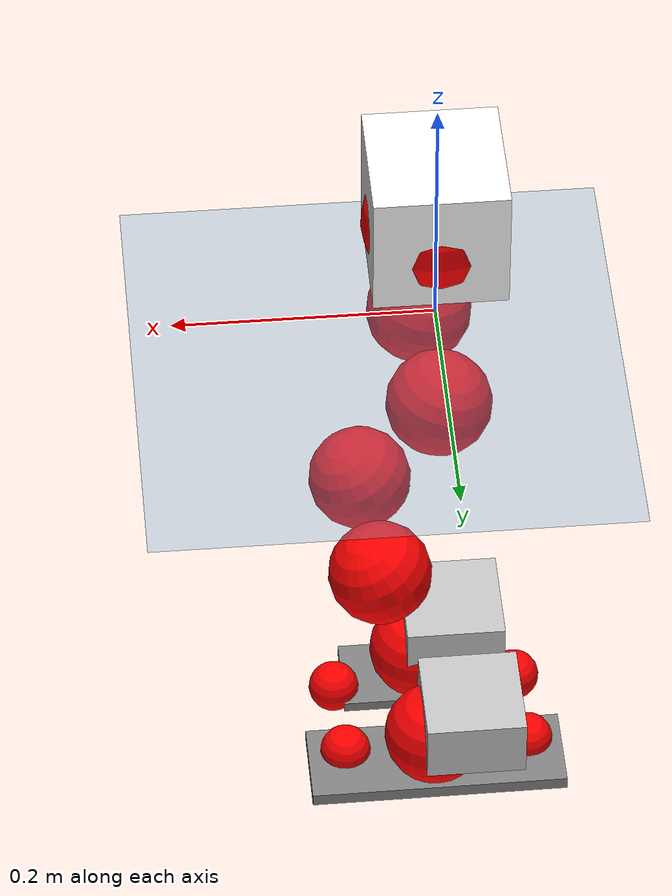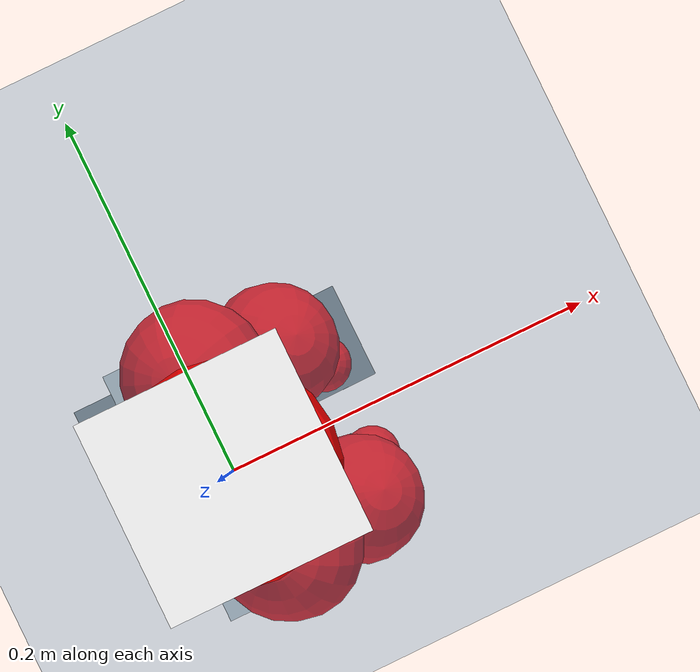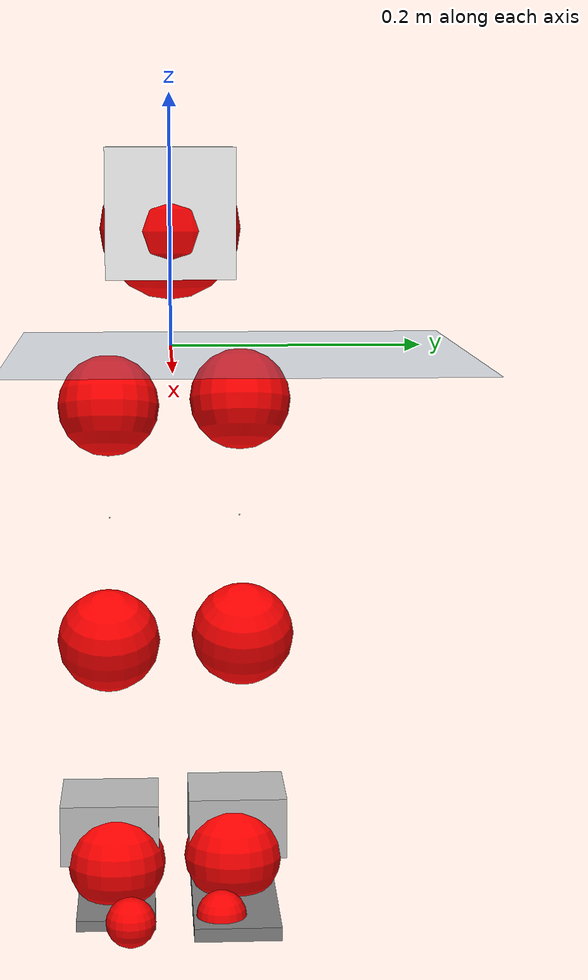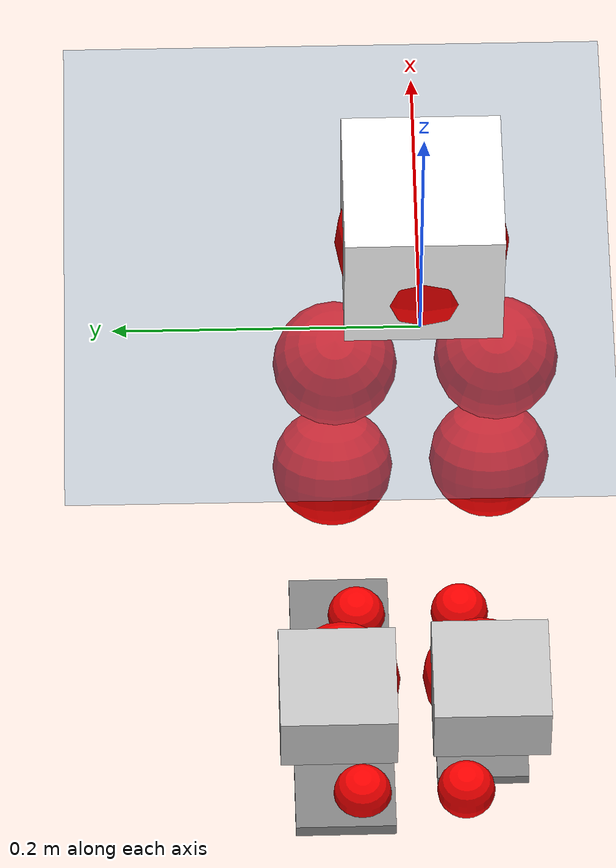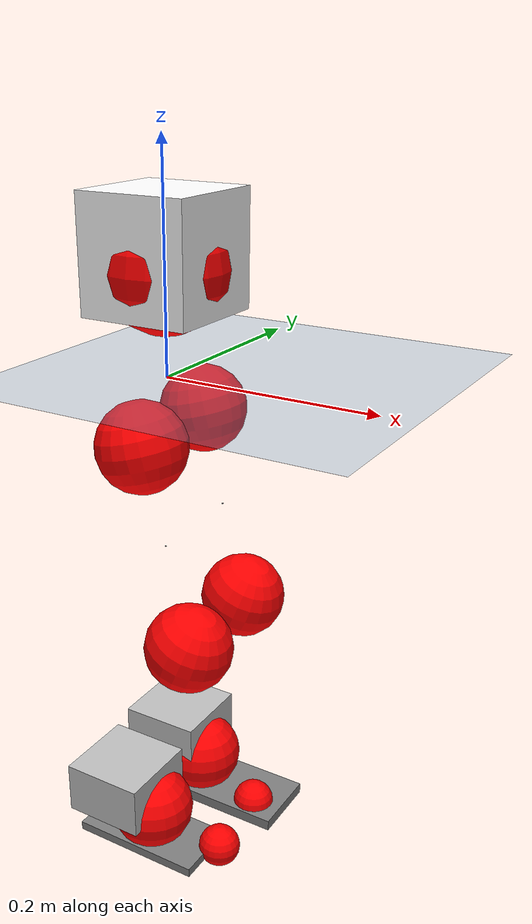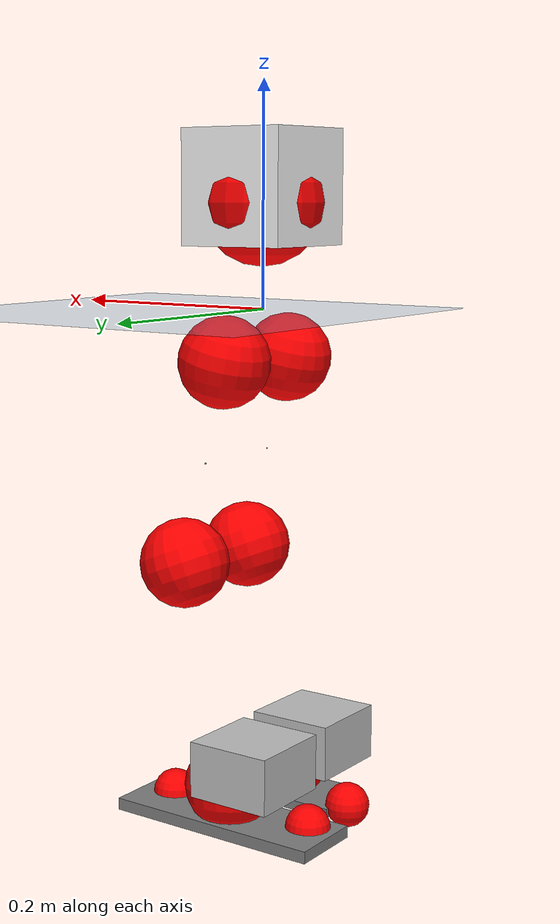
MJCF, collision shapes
<mujoco model="pi_12dof_release_v1">
  <compiler angle="radian" assetdir="assets" balanceinertia="true" inertiafromgeom="false"/>

  <option timestep="0.005" density="1.2" viscosity="2e-05"/>

  <size nkey="1"/>

  <visual>
    <quality shadowsize="8192"/>
    <map shadowclip="0.5"/>
  </visual>

  <default>
    <default class="/">
      <joint armature="0.01" damping="0.01" frictionloss="0.01"/>
      <geom contype="0" conaffinity="0" group="1" solref="-1000 -80"/>
      <site size="0.01 0.005 0.005" group="5"/>
      <general forcelimited="true" biastype="affine" gainprm="20" biasprm="0 -20 -0.5"/>
      <default class="foot">
        <geom size="0.0845 0.036 0.005" type="box" condim="6" group="4" priority="1" friction="0.9 0.2 0.2" solimp="0.015 1 0.005"/>
      </default>
      <default class="reward_collision_sphere">
        <geom group="5" rgba="1 0 0 1"/>
      </default>
    </default>
  </default>

  <asset>
    <texture type="skybox" colorspace="auto" name="//unnamed_texture_0" builtin="gradient" rgb1="0.95 0.95 0.95" rgb2="0.95 0.95 0.95" width="100" height="600"/>
    <texture type="2d" colorspace="auto" name="texplane" builtin="checker" rgb1="0.345 0.575 0.748" rgb2="0.345 0.575 0.748" markrgb="1 1 1" width="512" height="512"/>
    <material name="MatPlane" class="/" texture="texplane" texuniform="true" texrepeat="2 2" specular="0.9"/>
    <mesh name="baselink_1" class="/" file="baselink_1.STL"/>
    <mesh name="r_hip_pitch_link" class="/" file="r_hip_pitch_link.STL"/>
    <mesh name="r_hip_roll_link" class="/" file="r_hip_roll_link.STL"/>
    <mesh name="r_thigh_link" class="/" file="r_thigh_link.STL"/>
    <mesh name="r_calf_link" class="/" file="r_calf_link.STL"/>
    <mesh name="r_ankle_pitch_link" class="/" file="r_ankle_pitch_link.STL"/>
    <mesh name="r_ankle_roll_link" class="/" file="r_ankle_roll_link.STL"/>
    <mesh name="l_hip_pitch_link" class="/" file="l_hip_pitch_link.STL"/>
    <mesh name="l_hip_roll_link" class="/" file="l_hip_roll_link.STL"/>
    <mesh name="l_thigh_link" class="/" file="l_thigh_link.STL"/>
    <mesh name="l_calf_link" class="/" file="l_calf_link.STL"/>
    <mesh name="l_ankle_pitch_link" class="/" file="l_ankle_pitch_link.STL"/>
    <mesh name="l_ankle_roll_link" class="/" file="l_ankle_roll_link.STL"/>
  </asset>

  <worldbody>
    <geom name="floor" class="/" size="100 100 0.125" type="plane" group="0" material="MatPlane"/>
    <light name="toplight_shadow" class="/" pos="0 0 5" dir="0.0990148 0.0990148 -0.990148" type="directional" ambient="0.04 0.04 0.04" diffuse="0.55 0.55 0.55" specular="0.12 0.12 0.12"/>
    <light name="toplight_fill" class="/" pos="0 0 5" dir="0.0990148 0.0990148 -0.990148" type="directional" castshadow="false" ambient="0.04 0.04 0.04" diffuse="0.3 0.3 0.3" specular="0.08 0.08 0.08"/>
    <body name="trunk" pos="0.000867779 8.38434e-06 -0.000621598" quat="1 -0.000539531 0.000309649 0.000103096">
      <inertial pos="0.00290285 0.00123246 0.0566436" quat="0.692744 -0.000425056 0.0169174 0.720985" mass="2.30559" diaginertia="0.0153485 0.000750276 0.0175506"/>
      <joint name="//unnamed_joint_0" type="free"/>
      <geom name="//unnamed_geom_1" class="/" type="mesh" density="0" rgba="1 1 1 1" mesh="baselink_1"/>
      <geom name="//unnamed_geom_2" class="/" size="0.0507503 0.0507503 0.0507503" pos="0 0 0.107382" type="box" rgba="1 1 1 1"/>
      <geom name="//unnamed_geom_3" class="reward_collision_sphere" size="0.0558254" pos="0 0 0.0939596"/>
      <site name="imu" class="/" pos="0.0163029 -0.00835407 -0.00703155" size="0.0101501"/>
      <camera name="track" class="/" pos="0 -1.22052 0" quat="0.707107 0.707107 0 0" mode="trackcom"/>
      <camera name="ego_camera" class="/" pos="0.081936 0 0.24161" quat="-0.5 -0.5 0.5 0.5"/>
      <body name="r_hip_pitch_link" pos="0.00369956 -0.0159481 -0.0455011" quat="0.992292 0.000244006 -0.123921 -0.000552215">
        <inertial pos="-0.000559112 -0.0363535 -0.000165829" quat="-0.0139585 0.703369 -0.0317905 0.709977" mass="0.397179" diaginertia="0.00017412 8.41924e-06 0.000375093"/>
        <joint name="r_hip_pitch_joint" class="/" pos="0 0 0" axis="0.0152178 -0.999843 -0.00908976" range="-1.74154 1.29412" armature="0.00896086" damping="0.0232605" frictionloss="0.00882504"/>
        <geom name="//unnamed_geom_4" class="/" type="mesh" density="0" rgba="0.75294 0.75294 0.75294 1" mesh="r_hip_pitch_link"/>
        <geom name="//unnamed_geom_5" class="/" size="0.000507503 0.000507503 0.000507503" type="box" rgba="0.75294 0.75294 0.75294 1"/>
        <body name="r_hip_roll_link" pos="0.00254644 -0.0343271 -0.00156663" quat="1 0.000302236 3.26114e-05 0.000233662">
          <inertial pos="0.00110742 -0.000764396 -0.0836251" quat="0.71159 -0.0757897 -0.0917816 0.692439" mass="0.414759" diaginertia="0.000534758 2.37002e-05 0.000547479"/>
          <joint name="r_hip_roll_joint" class="/" pos="0 0 0" axis="-0.999874 0.0117949 -0.0106568" range="-0.0868701 0.545277" armature="0.00877178" damping="0.000445763" frictionloss="0.0102739"/>
          <geom name="//unnamed_geom_6" class="/" type="mesh" density="0" rgba="0.75294 0.75294 0.75294 1" mesh="r_hip_roll_link"/>
          <geom name="//unnamed_geom_7" class="/" size="0.000507503 0.000507503 0.000507503" type="box" rgba="0.75294 0.75294 0.75294 1"/>
          <geom name="//unnamed_geom_8" class="reward_collision_sphere" size="0.0406003"/>
          <body name="r_thigh_link" pos="-0.00038013 0.000465699 -0.0899411" quat="1 0.000293643 7.89259e-05 0.000167649">
            <inertial pos="-0.00136027 4.96066e-05 -0.0665017" quat="0.741001 0.671404 -0.00261255 0.0112947" mass="0.115564" diaginertia="0.000189877 8.04325e-06 0.000239402"/>
            <joint name="r_thigh_joint" class="/" pos="0 0 0" axis="-0.00629411 -0.00265923 -0.999977" stiffness="0.00186809" range="-0.251118 0.636327" armature="0.010028" damping="0.00867593" frictionloss="0.0111418"/>
            <geom name="//unnamed_geom_9" class="/" type="mesh" density="0" rgba="0.75294 0.75294 0.75294 1" mesh="r_thigh_link"/>
            <geom name="//unnamed_geom_10" class="/" size="0.000507503 0.000507503 0.000507503" type="box" rgba="0.75294 0.75294 0.75294 1"/>
            <body name="r_calf_link" pos="-0.000605736 -0.00125472 -0.0975937" quat="0.947626 0.000135494 0.319382 -5.06878e-05">
              <inertial pos="-0.00172763 -0.000467124 -0.0935126" quat="0.999989 0.000676686 -0.00191213 0.00411623" mass="0.836361" diaginertia="0.0054026 0.000306765 0.000776212"/>
              <joint name="r_calf_joint" class="/" pos="0 0 0" axis="-0.000345515 -1 0.000136236" range="-1.66419 0.682503" armature="0.00974097" damping="0.0118312" frictionloss="0.00910438"/>
              <geom name="//unnamed_geom_11" class="/" type="mesh" density="0" rgba="0.75294 0.75294 0.75294 1" mesh="r_calf_link"/>
              <geom name="//unnamed_geom_12" class="/" size="0.000507503 0.000507503 0.000507503" type="box" rgba="0.75294 0.75294 0.75294 1"/>
              <geom name="//unnamed_geom_13" class="reward_collision_sphere" size="0.0406003"/>
              <body name="r_ankle_pitch_link" pos="-0.000901125 -0.00249588 -0.190008" quat="0.980062 -0.000325794 -0.198693 -0.000309387">
                <inertial pos="0.00506677 0.00413123 -0.00108271" quat="-0.00302566 0.708546 -0.00309115 0.705651" mass="0.189396" diaginertia="0.000484663 1.90473e-05 0.000536603"/>
                <joint name="r_ankle_pitch_joint" class="/" pos="0 0 0" axis="-0.0139247 -0.999898 0.00322423" range="-1.35249 0.548679" armature="0.00893715" damping="0.0124192" frictionloss="0.0102455"/>
                <geom name="//unnamed_geom_14" class="/" type="mesh" density="0" rgba="0.75294 0.75294 0.75294 1" mesh="r_ankle_pitch_link"/>
                <geom name="//unnamed_geom_15" class="/" size="0.0395853 0.0406003 0.0253752" type="box" rgba="0.75294 0.75294 0.75294 1"/>
                <body name="r_ankle_roll_link" pos="0.081314 0.00554938 0.00129215" quat="1 0.000152988 -9.50944e-05 0.00034584">
                  <inertial pos="-0.0251352 0.000433416 -0.0215296" quat="0.565956 0.427526 0.430913 0.557879" mass="0.527896" diaginertia="0.00182027 8.74212e-05 0.00123172"/>
                  <joint name="r_ankle_roll_joint" class="/" pos="0 0 0" axis="-0.999996 -0.00292179 0.000227228" range="-0.170331 0.203848" armature="0.0115694" damping="0.0121607" frictionloss="0.00958952"/>
                  <geom name="//unnamed_geom_16" class="/" type="mesh" density="0" rgba="0.75294 0.75294 0.75294 1" mesh="r_ankle_roll_link"/>
                  <geom name="//unnamed_geom_17" class="/" type="mesh" rgba="0.75294 0.75294 0.75294 1" mesh="r_ankle_roll_link"/>
                  <geom name="right_foot" class="foot" size="0.0649948 0.0319041 0.00439635" pos="-0.0557165 0 -0.0590603"/>
                  <geom name="//unnamed_geom_19" class="reward_collision_sphere" size="0.0406003" pos="-0.054624 0 -0.0268456"/>
                  <geom name="//unnamed_geom_20" class="reward_collision_sphere" size="0.0203001" pos="0.0163872 0.0122052 -0.0536912"/>
                  <geom name="//unnamed_geom_21" class="reward_collision_sphere" size="0.0203001" pos="-0.131098 0.0122052 -0.0536912"/>
                  <site name="right_foot" class="foot" pos="-0.0557165 0 -0.0590603" size="0.0101501"/>
                </body>
              </body>
            </body>
          </body>
        </body>
      </body>
      <body name="l_hip_pitch_link" pos="0.00252215 0.0169283 -0.0416415" quat="0.992258 0.000699421 -0.124188 0.000538562">
        <inertial pos="0.00343223 0.0311742 -0.000464103" quat="-0.0440854 0.707514 0.0316369 0.704613" mass="0.413066" diaginertia="0.00019558 8.68568e-06 0.000452008"/>
        <joint name="l_hip_pitch_joint" class="/" pos="0 0 0" axis="-0.000245744 1 0.000803218" range="-1.21416 1.80513" armature="0.00885001" damping="0.0240167" frictionloss="0.0090645"/>
        <geom name="//unnamed_geom_22" class="/" type="mesh" density="0" rgba="0.75294 0.75294 0.75294 1" mesh="l_hip_pitch_link"/>
        <geom name="//unnamed_geom_23" class="/" size="0.000507503 0.000507503 0.000507503" type="box" rgba="0.75294 0.75294 0.75294 1"/>
        <body name="l_hip_roll_link" pos="-0.00151511 0.038511 -1.13915e-06" quat="1 -0.000269411 -8.91635e-05 -0.000162559">
          <inertial pos="-0.00262496 -0.0003445 -0.0844648" quat="0.699711 -0.07839 -0.0786408 0.705745" mass="0.40465" diaginertia="0.000514386 2.30421e-05 0.00057701"/>
          <joint name="l_hip_roll_joint" class="/" pos="0 0 0" axis="-0.999892 -0.00761593 0.0125724" stiffness="0.00822463" range="-0.562331 0.135493" armature="0.0109847" damping="0" frictionloss="0.0108635"/>
          <geom name="//unnamed_geom_24" class="/" type="mesh" density="0" rgba="0.75294 0.75294 0.75294 1" mesh="l_hip_roll_link"/>
          <geom name="//unnamed_geom_25" class="/" size="0.000507503 0.000507503 0.000507503" type="box" rgba="0.75294 0.75294 0.75294 1"/>
          <geom name="//unnamed_geom_26" class="reward_collision_sphere" size="0.0406003"/>
          <body name="l_thigh_link" pos="-0.00143585 -0.00172856 -0.0935344" quat="0.999999 0.000483672 6.58207e-05 0.0010813">
            <inertial pos="0.000160461 -0.00249012 -0.0640548" quat="0.670499 0.741665 -0.00236142 -0.018923" mass="0.116891" diaginertia="0.000193475 8.07506e-06 0.00026031"/>
            <joint name="l_thigh_joint" class="/" pos="0 0 0" axis="0.00213723 0.0128558 -0.999915" range="-0.631075 0.320212" armature="0.0111363" damping="0.0122298" frictionloss="0.0107355"/>
            <geom name="//unnamed_geom_27" class="/" type="mesh" density="0" rgba="0.75294 0.75294 0.75294 1" mesh="l_thigh_link"/>
            <geom name="//unnamed_geom_28" class="/" size="0.000507503 0.000507503 0.000507503" type="box" rgba="0.75294 0.75294 0.75294 1"/>
            <body name="l_calf_link" pos="-0.00123816 0.00164682 -0.0951261" quat="0.947658 0.000153628 0.319286 -2.65451e-05">
              <inertial pos="0.00234396 0.00224424 -0.0948573" quat="0.99988 0.00470257 -0.0128432 0.00722975" mass="0.831271" diaginertia="0.00528708 0.000287878 0.000767092"/>
              <joint name="l_calf_joint" class="/" pos="0 0 0" axis="0.00776368 0.999968 0.00189079" range="-0.600381 1.73338" armature="0.0108193" damping="0.0116112" frictionloss="0.0109188"/>
              <geom name="//unnamed_geom_29" class="/" type="mesh" density="0" rgba="0.75294 0.75294 0.75294 1" mesh="l_calf_link"/>
              <geom name="//unnamed_geom_30" class="/" size="0.000507503 0.000507503 0.000507503" type="box" rgba="0.75294 0.75294 0.75294 1"/>
              <geom name="//unnamed_geom_31" class="reward_collision_sphere" size="0.0406003"/>
              <body name="l_ankle_pitch_link" pos="-0.000255888 -0.00243388 -0.190171" quat="0.980038 -8.98558e-07 -0.198811 -2.14254e-06">
                <inertial pos="0.00572238 -0.00345936 0.00162387" quat="-0.00172173 0.707426 0.00220851 0.706782" mass="0.199492" diaginertia="0.000507615 1.95675e-05 0.000562969"/>
                <joint name="l_ankle_pitch_joint" class="/" pos="0 0 0" axis="-0.000274154 1 -5.62643e-05" range="-0.503955 1.29129" armature="0.00990032" damping="0.0039774" frictionloss="0.00803789"/>
                <geom name="//unnamed_geom_32" class="/" type="mesh" density="0" rgba="0.75294 0.75294 0.75294 1" mesh="l_ankle_pitch_link"/>
                <geom name="//unnamed_geom_33" class="/" size="0.0395853 0.0406003 0.0253752" type="box" rgba="0.75294 0.75294 0.75294 1"/>
                <body name="l_ankle_roll_link" pos="0.0836187 -0.00376196 0.00245138" quat="1 0.000170838 -0.000168126 0.000880452">
                  <inertial pos="-0.0291583 -0.000849502 -0.019547" quat="0.559224 0.434312 0.431974 0.558606" mass="0.55601" diaginertia="0.00173843 8.72395e-05 0.00124017"/>
                  <joint name="l_ankle_roll_joint" class="/" pos="0 0 0" axis="-0.999991 -0.00372578 0.00198945" stiffness="0.0010675" range="-0.14584 0.157463" armature="0.0087941" damping="0.0125268" frictionloss="0.0115291"/>
                  <geom name="//unnamed_geom_34" class="/" type="mesh" density="0" rgba="0.75294 0.75294 0.75294 1" mesh="l_ankle_roll_link"/>
                  <geom name="//unnamed_geom_35" class="/" type="mesh" rgba="0.75294 0.75294 0.75294 1" mesh="l_ankle_roll_link"/>
                  <geom name="left_foot" class="foot" size="0.102505 0.034819 0.00545654" pos="-0.0557165 0 -0.0590603"/>
                  <geom name="//unnamed_geom_37" class="reward_collision_sphere" size="0.0406003" pos="-0.054624 0 -0.0268456"/>
                  <geom name="//unnamed_geom_38" class="reward_collision_sphere" size="0.0203001" pos="0.0163872 -0.0122052 -0.0536912"/>
                  <geom name="//unnamed_geom_39" class="reward_collision_sphere" size="0.0203001" pos="-0.131098 -0.0122052 -0.0536912"/>
                  <site name="left_foot" class="foot" pos="-0.0557165 0 -0.0590603" size="0.0101501"/>
                </body>
              </body>
            </body>
          </body>
        </body>
      </body>
    </body>
  </worldbody>

  <contact>
    <pair class="/" geom1="floor" geom2="right_foot" name="//unnamed_contact_1"/>
    <pair class="/" geom1="floor" geom2="left_foot" name="//unnamed_contact_0"/>
  </contact>

  <actuator>
    <general name="r_hip_pitch_joint" class="/" joint="r_hip_pitch_joint" forcerange="-23.454 23.454" gainprm="19.619" biasprm="0 -19.619 -0.491911"/>
    <general name="r_hip_roll_joint" class="/" joint="r_hip_roll_joint" forcerange="-21.97 21.97" gainprm="19.619" biasprm="0 -19.619 -0.491911"/>
    <general name="r_thigh_joint" class="/" joint="r_thigh_joint" forcerange="-21.4331 21.4331" gainprm="19.619" biasprm="0 -19.619 -0.491911"/>
    <general name="r_calf_joint" class="/" joint="r_calf_joint" forcerange="-21.9016 21.9016" gainprm="19.619" biasprm="0 -19.619 -0.491911"/>
    <general name="r_ankle_pitch_joint" class="/" joint="r_ankle_pitch_joint" forcerange="-21.7912 21.7912" gainprm="19.619" biasprm="0 -19.619 -0.491911"/>
    <general name="r_ankle_roll_joint" class="/" joint="r_ankle_roll_joint" forcerange="-21.2942 21.2942" gainprm="19.619" biasprm="0 -19.619 -0.491911"/>
    <general name="l_hip_pitch_joint" class="/" joint="l_hip_pitch_joint" forcerange="-19.9715 19.9715" gainprm="19.619" biasprm="0 -19.619 -0.491911"/>
    <general name="l_hip_roll_joint" class="/" joint="l_hip_roll_joint" forcerange="-20.0738 20.0738" gainprm="19.619" biasprm="0 -19.619 -0.491911"/>
    <general name="l_thigh_joint" class="/" joint="l_thigh_joint" forcerange="-19.3184 19.3184" gainprm="19.619" biasprm="0 -19.619 -0.491911"/>
    <general name="l_calf_joint" class="/" joint="l_calf_joint" forcerange="-20.3252 20.3252" gainprm="19.619" biasprm="0 -19.619 -0.491911"/>
    <general name="l_ankle_pitch_joint" class="/" joint="l_ankle_pitch_joint" forcerange="-23.0644 23.0644" gainprm="19.619" biasprm="0 -19.619 -0.491911"/>
    <general name="l_ankle_roll_joint" class="/" joint="l_ankle_roll_joint" forcerange="-22.3063 22.3063" gainprm="19.619" biasprm="0 -19.619 -0.491911"/>
  </actuator>

  <sensor>
    <gyro site="imu" name="imu_angular_velocity"/>
    <velocimeter site="imu" name="imu_linear_velocity"/>
    <framelinvel objtype="site" objname="left_foot" name="left_foot_global_linear_velocity"/>
    <framelinvel objtype="site" objname="right_foot" name="right_foot_global_linear_velocity"/>
  </sensor>

  <keyframe>
    <key name="home" qpos="0 0 0.291 1 0 0 0 0.4 0 0 -0.8 0.4 0 -0.4 0 0 0.8 -0.4 0"/>
  </keyframe>
</mujoco>
